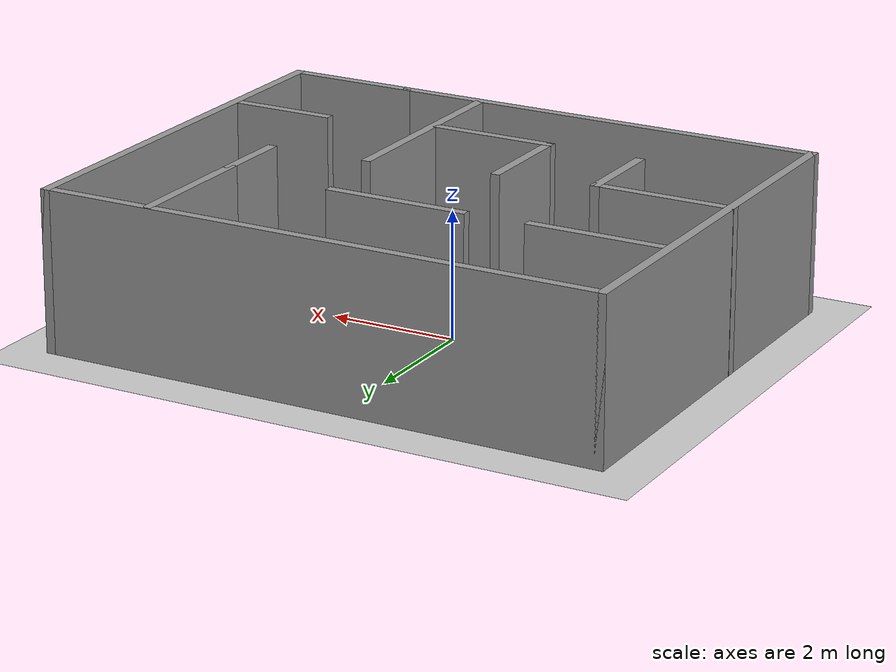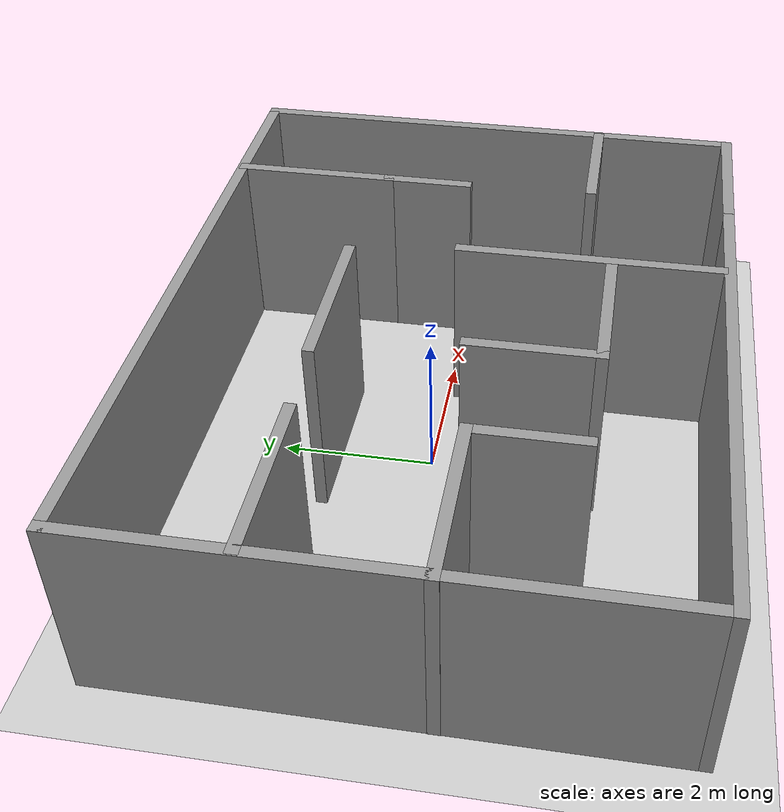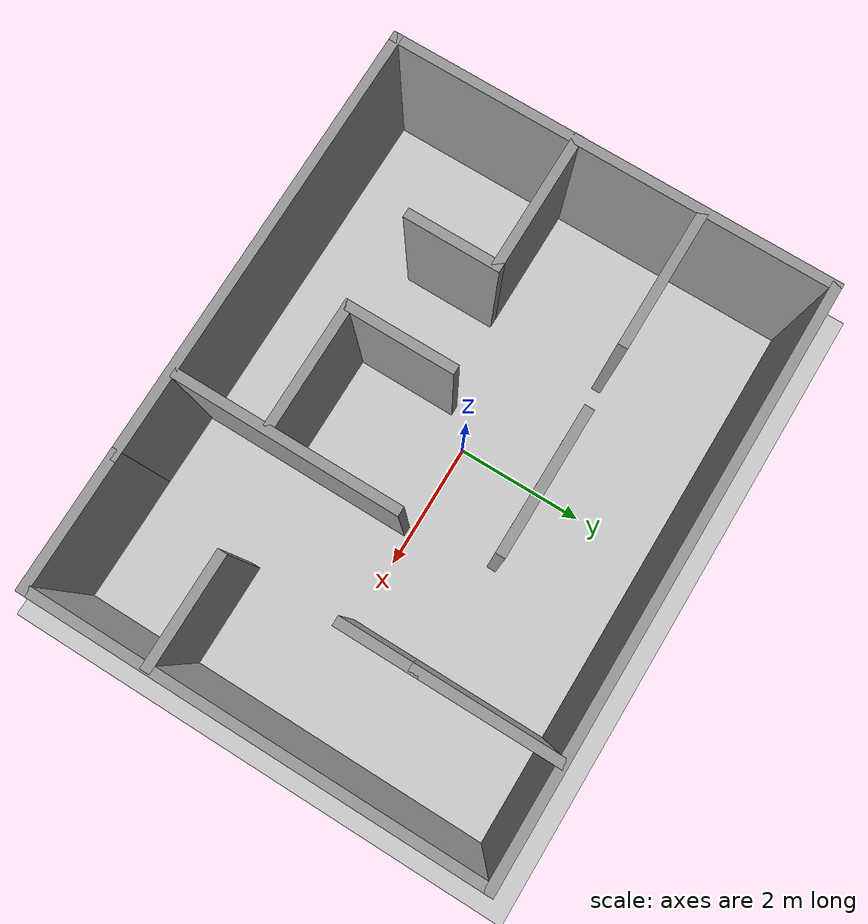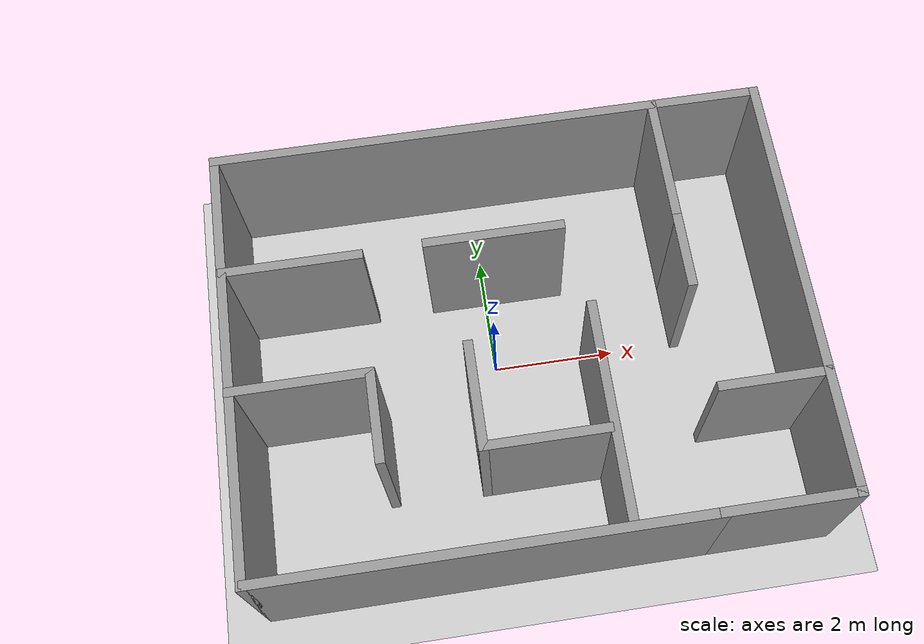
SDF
<sdf version="1.6">
 <world name="default">
  <light name="sun" type="directional">
   <pose>0 0 10 0 -0 0</pose>
   <diffuse>0.8 0.8 0.8 1</diffuse>
   <specular>0.2 0.2 0.2 1</specular>
   <attenuation>
    <range>1000</range>
    <constant>0.9</constant>
    <linear>0.01</linear>
    <quadratic>0.001</quadratic>
   </attenuation>
   <direction>-0.5 0.1 -0.9</direction>
  </light>
  <model name="ground_plane">
   <static>1</static>
   <link name="link">
    <collision name="collision">
     <geometry><plane><normal>0 0 1</normal><size>100 100</size></plane></geometry>
     <surface>
      <contact><collide_bitmask>65535</collide_bitmask></contact>
      <friction><ode><mu>100</mu><mu2>50</mu2></ode></friction>
     </surface>
    </collision>
    <visual name="visual">
     <cast_shadows>0</cast_shadows>
     <geometry><plane><normal>0 0 1</normal><size>100 100</size></plane></geometry>
     <material>
      <script><uri>file://media/materials/scripts/gazebo.material</uri><name>Gazebo/Grey</name></script>
     </material>
    </visual>
   </link>
  </model>
  <gravity>0 0 -9.8</gravity>
  <magnetic_field>6e-06 2.3e-05 -4.2e-05</magnetic_field>
  <atmosphere type="adiabatic"/>
  <physics name="default_physics" default="0" type="ode">
   <max_step_size>0.001</max_step_size>
   <real_time_factor>1</real_time_factor>
   <real_time_update_rate>1000</real_time_update_rate>
  </physics>
  <scene><ambient>0.4 0.4 0.4 1</ambient><background>0.7 0.7 0.7 1</background><shadows>1</shadows></scene>
  <audio><device>default</device></audio>
  <spherical_coordinates>
   <surface_model>EARTH_WGS84</surface_model>
   <latitude_deg>0</latitude_deg>
   <longitude_deg>0</longitude_deg>
   <elevation>0</elevation>
   <heading_deg>0</heading_deg>
  </spherical_coordinates>
  <model name="simple">
   <pose>0.372816 -0.175 0 0 -0 0</pose>
   <link name="Wall_0">
    <collision name="Wall_0_Collision">
     <geometry><box><size>7 0.15 2.5</size></box></geometry>
     <pose>0 0 1.25 0 -0 0</pose>
    </collision>
    <visual name="Wall_0_Visual">
     <pose>0 0 1.25 0 -0 0</pose>
     <geometry><box><size>7 0.15 2.5</size></box></geometry>
     <material>
      <script><uri>file://media/materials/scripts/gazebo.material</uri><name>Gazebo/Grey</name></script>
      <ambient>1 1 1 1</ambient>
     </material>
     <meta><layer>0</layer></meta>
    </visual>
    <pose>-0.997816 -3.425 0 0 -0 0</pose>
   </link>
   <link name="Wall_11">
    <collision name="Wall_11_Collision">
     <geometry><box><size>2.25 0.15 2.5</size></box></geometry>
     <pose>0 0 1.25 0 -0 0</pose>
    </collision>
    <visual name="Wall_11_Visual">
     <pose>0 0 1.25 0 -0 0</pose>
     <geometry><box><size>2.25 0.15 2.5</size></box></geometry>
     <material>
      <script><uri>file://media/materials/scripts/gazebo.material</uri><name>Gazebo/Grey</name></script>
      <ambient>1 1 1 1</ambient>
     </material>
     <meta><layer>0</layer></meta>
    </visual>
    <pose>-3.37718 -0.545024 0 0 -0 0</pose>
   </link>
   <link name="Wall_12">
    <collision name="Wall_12_Collision">
     <geometry><box><size>1.5 0.15 2.5</size></box></geometry>
     <pose>0 0 1.25 0 -0 0</pose>
    </collision>
    <visual name="Wall_12_Visual">
     <pose>0 0 1.25 0 -0 0</pose>
     <geometry><box><size>1.5 0.15 2.5</size></box></geometry>
     <material>
      <script><uri>file://media/materials/scripts/gazebo.material</uri><name>Gazebo/Grey</name></script>
      <ambient>1 1 1 1</ambient>
     </material>
     <meta><layer>0</layer></meta>
    </visual>
    <pose>-2.32718 -1.22002 0 0 -0 -1.5708</pose>
   </link>
   <link name="Wall_14">
    <collision name="Wall_14_Collision">
     <geometry><box><size>3.5 0.15 2.5</size></box></geometry>
     <pose>0 0 1.25 0 -0 0</pose>
    </collision>
    <visual name="Wall_14_Visual">
     <pose>0 0 1.25 0 -0 0</pose>
     <geometry><box><size>3.5 0.15 2.5</size></box></geometry>
     <material>
      <script><uri>file://media/materials/scripts/gazebo.material</uri><name>Gazebo/Grey</name></script>
      <ambient>1 1 1 1</ambient>
     </material>
     <meta><layer>0</layer></meta>
    </visual>
    <pose>1.12416 -1.6457 0 0 -0 1.5708</pose>
   </link>
   <link name="Wall_16">
    <collision name="Wall_16_Collision">
     <geometry><box><size>2.25 0.15 2.5</size></box></geometry>
     <pose>0 0 1.25 0 -0 0</pose>
    </collision>
    <visual name="Wall_16_Visual">
     <pose>0 0 1.25 0 -0 0</pose>
     <geometry><box><size>2.25 0.15 2.5</size></box></geometry>
     <material>
      <script><uri>file://media/materials/scripts/gazebo.material</uri><name>Gazebo/Grey</name></script>
      <ambient>1 1 1 1</ambient>
     </material>
     <meta><layer>0</layer></meta>
    </visual>
    <pose>-0.179127 1.46633 0 0 -0 0</pose>
   </link>
   <link name="Wall_18">
    <collision name="Wall_18_Collision">
     <geometry><box><size>1.75 0.15 2.5</size></box></geometry>
     <pose>0 0 1.25 0 -0 0</pose>
    </collision>
    <visual name="Wall_18_Visual">
     <pose>0 0 1.25 0 -0 0</pose>
     <geometry><box><size>1.75 0.15 2.5</size></box></geometry>
     <material>
      <script><uri>file://media/materials/scripts/gazebo.material</uri><name>Gazebo/Grey</name></script>
      <ambient>1 1 1 1</ambient>
     </material>
     <meta><layer>0</layer></meta>
    </visual>
    <pose>3.60267 -1.5507 0 0 -0 3.14159</pose>
   </link>
   <link name="Wall_20">
    <collision name="Wall_20_Collision">
     <geometry><box><size>2 0.15 2.5</size></box></geometry>
     <pose>0 0 1.25 0 -0 0</pose>
    </collision>
    <visual name="Wall_20_Visual">
     <pose>0 0 1.25 0 -0 0</pose>
     <geometry><box><size>2 0.15 2.5</size></box></geometry>
     <material>
      <script><uri>file://media/materials/scripts/gazebo.material</uri><name>Gazebo/Grey</name></script>
      <ambient>1 1 1 1</ambient>
     </material>
     <meta><layer>0</layer></meta>
    </visual>
    <pose>0.098594 -1.93286 0 0 -0 3.14159</pose>
   </link>
   <link name="Wall_22">
    <collision name="Wall_22_Collision">
     <geometry><box><size>1.75 0.15 2.5</size></box></geometry>
     <pose>0 0 1.25 0 -0 0</pose>
    </collision>
    <visual name="Wall_22_Visual">
     <pose>0 0 1.25 0 -0 0</pose>
     <geometry><box><size>1.75 0.15 2.5</size></box></geometry>
     <material>
      <script><uri>file://media/materials/scripts/gazebo.material</uri><name>Gazebo/Grey</name></script>
      <ambient>1 1 1 1</ambient>
     </material>
     <meta><layer>0</layer></meta>
    </visual>
    <pose>-0.826407 -1.13286 0 0 -0 1.5708</pose>
   </link>
   <link name="Wall_24">
    <collision name="Wall_24_Collision">
     <geometry><box><size>2.25 0.15 2.5</size></box></geometry>
     <pose>0 0 1.25 0 -0 0</pose>
    </collision>
    <visual name="Wall_24_Visual">
     <pose>0 0 1.25 0 -0 0</pose>
     <geometry><box><size>2.25 0.15 2.5</size></box></geometry>
     <material>
      <script><uri>file://media/materials/scripts/gazebo.material</uri><name>Gazebo/Grey</name></script>
      <ambient>1 1 1 1</ambient>
     </material>
     <meta><layer>0</layer></meta>
    </visual>
    <pose>2.71313 2.34724 0 0 -0 -1.5708</pose>
   </link>
   <link name="Wall_25">
    <collision name="Wall_25_Collision">
     <geometry><box><size>1.25 0.15 2.5</size></box></geometry>
     <pose>0 0 1.25 0 -0 0</pose>
    </collision>
    <visual name="Wall_25_Visual">
     <pose>0 0 1.25 0 -0 0</pose>
     <geometry><box><size>1.25 0.15 2.5</size></box></geometry>
     <material>
      <script><uri>file://media/materials/scripts/gazebo.material</uri><name>Gazebo/Grey</name></script>
      <ambient>1 1 1 1</ambient>
     </material>
     <meta><layer>0</layer></meta>
    </visual>
    <pose>2.71313 0.747236 0 0 -0 -1.5708</pose>
   </link>
   <link name="Wall_4">
    <collision name="Wall_4_Collision">
     <geometry><box><size>7 0.15 2.5</size></box></geometry>
     <pose>0 0 1.25 0 -0 0</pose>
    </collision>
    <visual name="Wall_4_Visual">
     <pose>0 0 1.25 0 -0 0</pose>
     <geometry><box><size>7 0.15 2.5</size></box></geometry>
     <material>
      <script><uri>file://media/materials/scripts/gazebo.material</uri><name>Gazebo/Grey</name></script>
      <ambient>1 1 1 1</ambient>
     </material>
     <meta><layer>0</layer></meta>
    </visual>
    <pose>-4.42282 -0 0 0 -0 1.5708</pose>
   </link>
   <link name="Wall_5">
    <collision name="Wall_5_Collision">
     <geometry><box><size>9 0.15 2.5</size></box></geometry>
     <pose>0 0 1.25 0 -0 0</pose>
    </collision>
    <visual name="Wall_5_Visual">
     <pose>0 0 1.25 0 -0 0</pose>
     <geometry><box><size>9 0.15 2.5</size></box></geometry>
     <material>
      <script><uri>file://media/materials/scripts/gazebo.material</uri><name>Gazebo/Grey</name></script>
      <ambient>1 1 1 1</ambient>
     </material>
     <meta><layer>0</layer></meta>
    </visual>
    <pose>0.002184 3.425 0 0 -0 0</pose>
   </link>
   <link name="Wall_6">
    <collision name="Wall_6_Collision">
     <geometry><box><size>7 0.15 2.5</size></box></geometry>
     <pose>0 0 1.25 0 -0 0</pose>
    </collision>
    <visual name="Wall_6_Visual">
     <pose>0 0 1.25 0 -0 0</pose>
     <geometry><box><size>7 0.15 2.5</size></box></geometry>
     <material>
      <script><uri>file://media/materials/scripts/gazebo.material</uri><name>Gazebo/Grey</name></script>
      <ambient>1 1 1 1</ambient>
     </material>
     <meta><layer>0</layer></meta>
    </visual>
    <pose>4.42718 -0 0 0 -0 -1.5708</pose>
   </link>
   <link name="Wall_7">
    <collision name="Wall_7_Collision">
     <geometry><box><size>2.15 0.15 2.5</size></box></geometry>
     <pose>0 0 1.25 0 -0 0</pose>
    </collision>
    <visual name="Wall_7_Visual">
     <pose>0 0 1.25 0 -0 0</pose>
     <geometry><box><size>2.15 0.15 2.5</size></box></geometry>
     <material>
      <script><uri>file://media/materials/scripts/gazebo.material</uri><name>Gazebo/Grey</name></script>
      <ambient>1 1 1 1</ambient>
     </material>
     <meta><layer>0</layer></meta>
    </visual>
    <pose>3.42718 -3.425 0 0 -0 3.14159</pose>
   </link>
   <link name="Wall_9">
    <collision name="Wall_9_Collision">
     <geometry><box><size>2.25 0.15 2.5</size></box></geometry>
     <pose>0 0 1.25 0 -0 0</pose>
    </collision>
    <visual name="Wall_9_Visual">
     <pose>0 0 1.25 0 -0 0</pose>
     <geometry><box><size>2.25 0.15 2.5</size></box></geometry>
     <material>
      <script><uri>file://media/materials/scripts/gazebo.material</uri><name>Gazebo/Grey</name></script>
      <ambient>1 1 1 1</ambient>
     </material>
     <meta><layer>0</layer></meta>
    </visual>
    <pose>-3.35707 1.42611 0 0 -0 0</pose>
   </link>
   <static>1</static>
  </model>
 </world>
</sdf>
